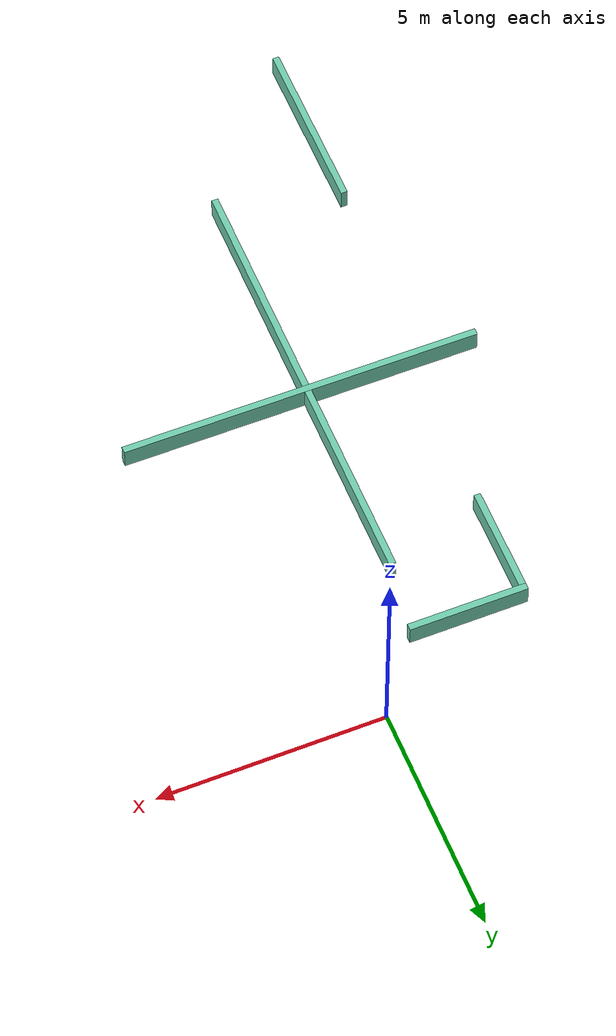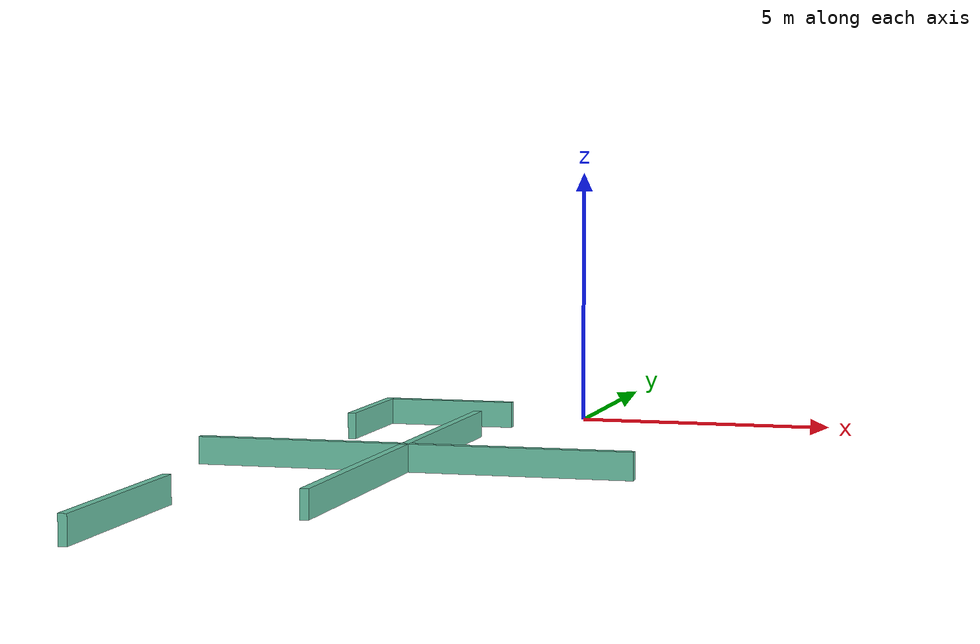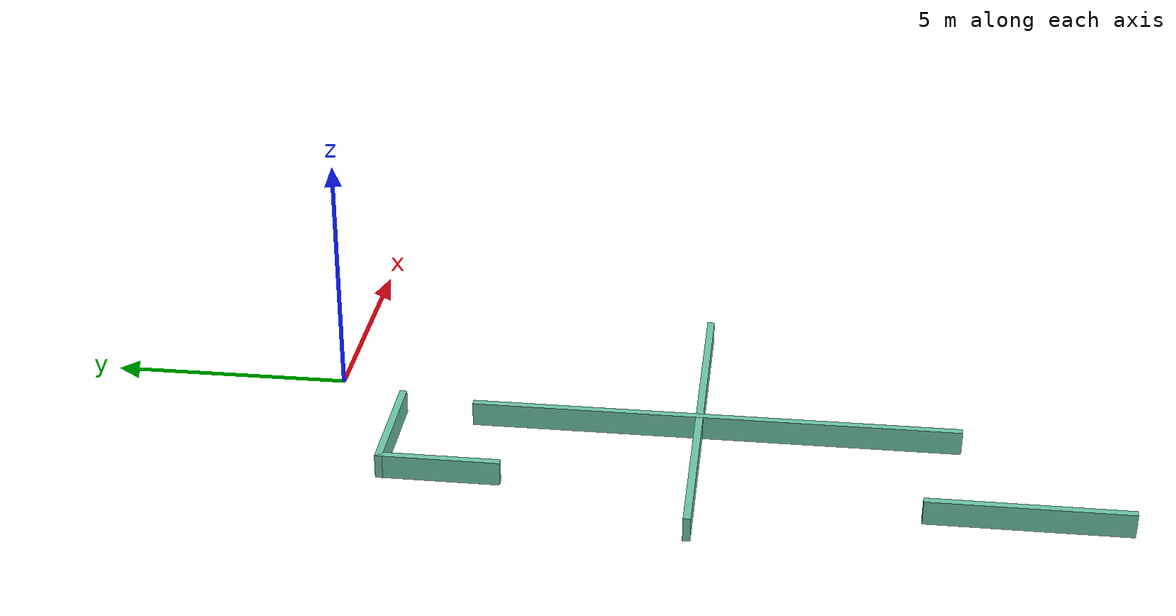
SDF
<?xml version='1.0'?>
<sdf version='1.6'>
  <model name='obstacles'>
    <pose frame=''>-1.2526 -8.8105 0 0 -0 0</pose>
    <link name='Wall_1'>
      <collision name='Wall_1_Collision'>
        <geometry>
          <box>
            <size>10 0.15 0.5</size>
          </box>
        </geometry>
        <pose frame=''>0 0 0.25 0 -0 0</pose>
      </collision>
      <visual name='Wall_1_Visual'>
        <pose frame=''>0 0 0.25 0 -0 0</pose>
        <geometry>
          <box>
            <size>10 0.15 0.5</size>
          </box>
        </geometry>
        <material>
          <script>
            <uri>file://media/materials/scripts/gazebo.material</uri>
            <name>Gazebo/Grey</name>
          </script>
          <ambient>0.435294 0.796078 0.67451 1</ambient>
        </material>
        <meta>
          <layer>0</layer>
        </meta>
      </visual>
      <pose frame=''>-0.131155 0.762719 0 0 0 -1.5708</pose>
    </link>
    <link name='Wall_11'>
      <collision name='Wall_11_Collision'>
        <geometry>
          <box>
            <size>4 0.15 0.5</size>
          </box>
        </geometry>
        <pose frame=''>0 0 0.25 0 -0 0</pose>
      </collision>
      <visual name='Wall_11_Visual'>
        <pose frame=''>0 0 0.25 0 -0 0</pose>
        <geometry>
          <box>
            <size>4 0.15 0.5</size>
          </box>
        </geometry>
        <material>
          <script>
            <uri>file://media/materials/scripts/gazebo.material</uri>
            <name>Gazebo/Grey</name>
          </script>
          <ambient>0.435294 0.796078 0.67451 1</ambient>
        </material>
        <meta>
          <layer>0</layer>
        </meta>
      </visual>
      <pose frame=''>-2.8004 -5.3635 0 0 0 -1.5708</pose>
    </link>
    <link name='Wall_3'>
      <collision name='Wall_3_Collision'>
        <geometry>
          <box>
            <size>8 0.15 0.5</size>
          </box>
        </geometry>
        <pose frame=''>0 0 0.25 0 -0 0</pose>
      </collision>
      <visual name='Wall_3_Visual'>
        <pose frame=''>0 0 0.25 0 -0 0</pose>
        <geometry>
          <box>
            <size>8 0.15 0.5</size>
          </box>
        </geometry>
        <material>
          <script>
            <uri>file://media/materials/scripts/gazebo.material</uri>
            <name>Gazebo/Grey</name>
          </script>
          <ambient>0.435294 0.796078 0.67451 1</ambient>
        </material>
        <meta>
          <layer>0</layer>
        </meta>
      </visual>
      <pose frame=''>0 1.07432 0 0 -0 0</pose>
    </link>
    <link name='Wall_5'>
      <collision name='Wall_5_Collision'>
        <geometry>
          <box>
            <size>2.62306 0.15 0.5</size>
          </box>
        </geometry>
        <pose frame=''>0 0 0.25 0 -0 0</pose>
      </collision>
      <visual name='Wall_5_Visual'>
        <pose frame=''>0 0 0.25 0 -0 0</pose>
        <geometry>
          <box>
            <size>2.62306 0.15 0.5</size>
          </box>
        </geometry>
        <material>
          <script>
            <uri>file://media/materials/scripts/gazebo.material</uri>
            <name>Gazebo/Grey</name>
          </script>
          <ambient>0.435294 0.796078 0.67451 1</ambient>
        </material>
        <meta>
          <layer>0</layer>
        </meta>
      </visual>
      <pose frame=''>-1.1619 7.2885 0 0 -0 3.14159</pose>
    </link>
    <link name='Wall_8'>
      <collision name='Wall_8_Collision'>
        <geometry>
          <box>
            <size>2.5 0.15 0.5</size>
          </box>
        </geometry>
        <pose frame=''>0 0 0.25 0 -0 0</pose>
      </collision>
      <visual name='Wall_8_Visual'>
        <pose frame=''>0 0 0.25 0 -0 0</pose>
        <geometry>
          <box>
            <size>2.5 0.15 0.5</size>
          </box>
        </geometry>
        <material>
          <script>
            <uri>file://media/materials/scripts/gazebo.material</uri>
            <name>Gazebo/Grey</name>
          </script>
          <ambient>0.435294 0.796078 0.67451 1</ambient>
        </material>
        <meta>
          <layer>0</layer>
        </meta>
      </visual>
      <pose frame=''>-2.3984 6.1135 0 0 0 -1.5708</pose>
    </link>
    <static>1</static>
  </model>
</sdf>
